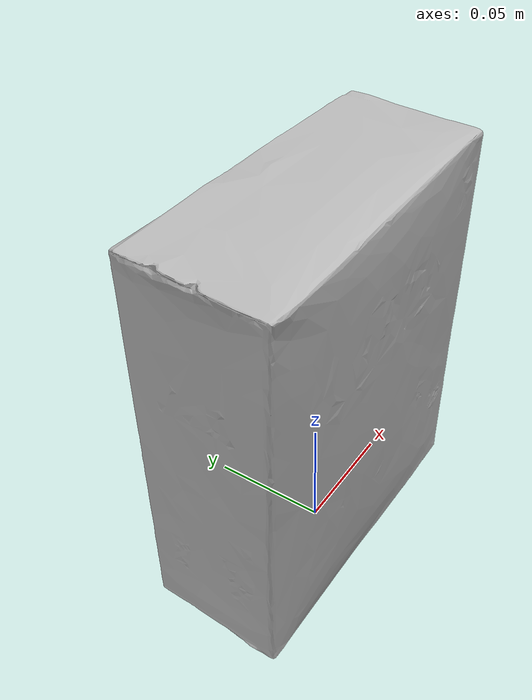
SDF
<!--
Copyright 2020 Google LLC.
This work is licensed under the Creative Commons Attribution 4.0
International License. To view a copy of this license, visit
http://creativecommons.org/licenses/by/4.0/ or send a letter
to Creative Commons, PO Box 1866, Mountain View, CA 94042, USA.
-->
<?xml version="1.0" ?>
<sdf version="1.6">
  <model name="Crunch_Girl_Scouts_Candy_Bars_Peanut_Butter_Creme_78_oz_box">
    <link name="link_0">
      <visual name="visual">
        <geometry>
          <mesh>
            <uri>meshes/model.obj</uri>
          </mesh>
        </geometry>
      </visual>
      <collision name="collision_0">
        <geometry>
          <mesh>
            <uri>meshes/model.obj</uri>
          </mesh>
        </geometry>
      </collision>
    </link>
  </model>
</sdf>
